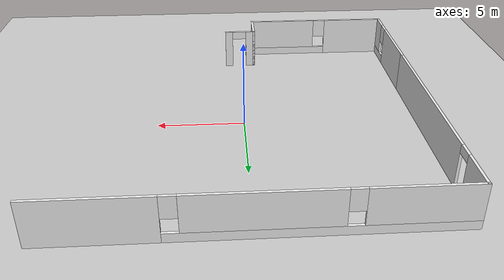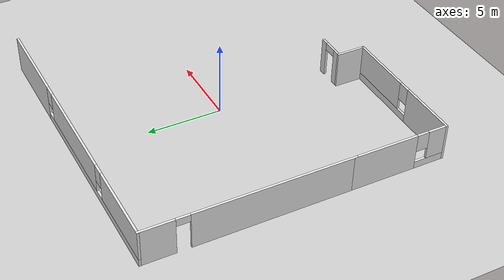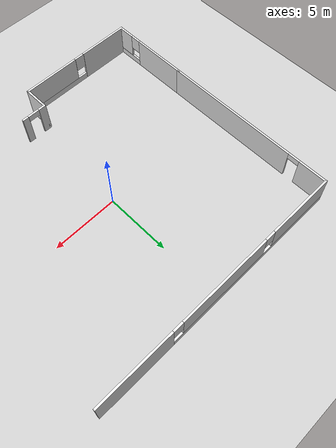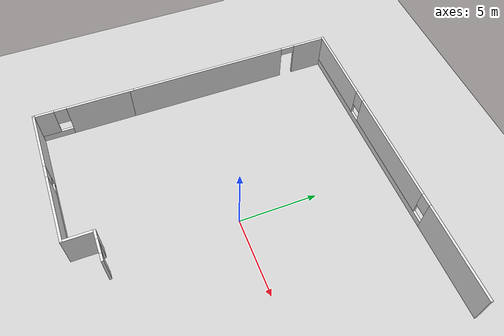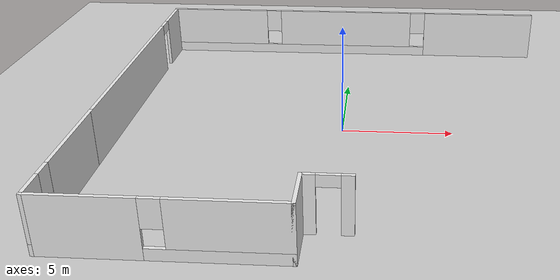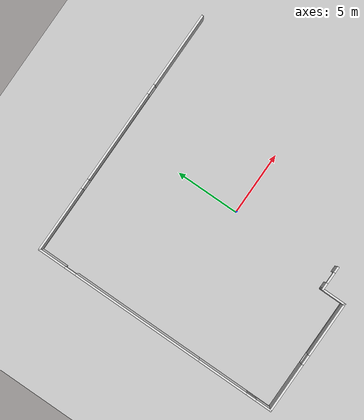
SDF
<sdf version="1.7">
 <world name="default">
  <model name="ground_plane">
   <static>1</static>
   <link name="link">
    <collision name="collision">
     <geometry><plane><normal>0 0 1</normal><size>100 100</size></plane></geometry>
     <surface><friction><ode><mu>100</mu><mu2>50</mu2></ode></friction></surface>
    </collision>
    <visual name="visual">
     <cast_shadows>0</cast_shadows>
     <geometry><plane><normal>0 0 1</normal><size>100 100</size></plane></geometry>
     <material>
      <script><uri>file://media/materials/scripts/gazebo.material</uri><name>Gazebo/Grey</name></script>
     </material>
    </visual>
   </link>
  </model>
  <model name="office_env_w_complete_new">
   <link name="Wall_10">
    <pose>-5.46873 -9.925 0 0 -0 0</pose>
    <visual name="Wall_10_Visual_0">
     <pose>-2.62812 0 1.25 0 -0 0</pose>
     <geometry><box><size>3.99376 0.15 2.5</size></box></geometry>
     <material>
      <script>
       <uri>model://office_env_w/materials/scripts</uri>
       <uri>model://office_env_w/materials/textures</uri>
       <name>wall_white</name>
      </script>
      <shader type="pixel"/>
     </material>
     <meta><layer>0</layer></meta>
    </visual>
    <visual name="Wall_10_Visual_1">
     <pose>1.99688 0 0.25 0 -0 0</pose>
     <geometry><box><size>5.25624 0.15 0.5</size></box></geometry>
     <material>
      <script>
       <uri>model://office_env_w/materials/scripts</uri>
       <uri>model://office_env_w/materials/textures</uri>
       <name>wall_white</name>
      </script>
      <shader type="pixel"/>
     </material>
     <meta><layer>0</layer></meta>
    </visual>
    <visual name="Wall_10_Visual_2">
     <pose>2.39688 0 1.5 0 -0 0</pose>
     <geometry><box><size>4.45624 0.15 2</size></box></geometry>
     <material>
      <script>
       <uri>model://office_env_w/materials/scripts</uri>
       <uri>model://office_env_w/materials/textures</uri>
       <name>wall_white</name>
      </script>
      <shader type="pixel"/>
     </material>
     <meta><layer>0</layer></meta>
    </visual>
    <visual name="Wall_10_Visual_3">
     <pose>-0.231239 0 1.9 0 -0 0</pose>
     <geometry><box><size>0.8 0.15 1.2</size></box></geometry>
     <material>
      <script>
       <uri>model://office_env_w/materials/scripts</uri>
       <uri>model://office_env_w/materials/textures</uri>
       <name>wall_white</name>
      </script>
      <shader type="pixel"/>
     </material>
     <meta><layer>0</layer></meta>
    </visual>
    <collision name="Wall_10_Collision_0">
     <pose>-2.62812 0 1.25 0 -0 0</pose>
     <geometry><box><size>3.99376 0.15 2.5</size></box></geometry>
     <surface>
      <friction>
       <ode><mu>1</mu><mu2>1</mu2><fdir1>0 0 0</fdir1><slip1>0</slip1><slip2>0</slip2></ode>
       <torsional>
        <coefficient>1</coefficient>
        <patch_radius>0</patch_radius>
        <surface_radius>0</surface_radius>
        <use_patch_radius>1</use_patch_radius>
        <ode><slip>0</slip></ode>
       </torsional>
      </friction>
      <bounce><restitution_coefficient>0</restitution_coefficient><threshold>1e+06</threshold></bounce>
      <contact>
       <collide_without_contact>0</collide_without_contact>
       <collide_without_contact_bitmask>1</collide_without_contact_bitmask>
       <collide_bitmask>1</collide_bitmask>
       <ode>
        <soft_cfm>0</soft_cfm>
        <soft_erp>0.2</soft_erp>
        <kp>1e+13</kp>
        <kd>1</kd>
        <max_vel>0.01</max_vel>
        <min_depth>0</min_depth>
       </ode>
       <bullet>
        <split_impulse>1</split_impulse>
        <split_impulse_penetration_threshold>-0.01</split_impulse_penetration_threshold>
        <soft_cfm>0</soft_cfm>
        <soft_erp>0.2</soft_erp>
        <kp>1e+13</kp>
        <kd>1</kd>
       </bullet>
      </contact>
     </surface>
    </collision>
    <collision name="Wall_10_Collision_2">
     <pose>2.39688 0 1.5 0 -0 0</pose>
     <geometry><box><size>4.45624 0.15 2</size></box></geometry>
     <surface>
      <friction>
       <ode><mu>1</mu><mu2>1</mu2><fdir1>0 0 0</fdir1><slip1>0</slip1><slip2>0</slip2></ode>
       <torsional>
        <coefficient>1</coefficient>
        <patch_radius>0</patch_radius>
        <surface_radius>0</surface_radius>
        <use_patch_radius>1</use_patch_radius>
        <ode><slip>0</slip></ode>
       </torsional>
      </friction>
      <bounce><restitution_coefficient>0</restitution_coefficient><threshold>1e+06</threshold></bounce>
      <contact>
       <collide_without_contact>0</collide_without_contact>
       <collide_without_contact_bitmask>1</collide_without_contact_bitmask>
       <collide_bitmask>1</collide_bitmask>
       <ode>
        <soft_cfm>0</soft_cfm>
        <soft_erp>0.2</soft_erp>
        <kp>1e+13</kp>
        <kd>1</kd>
        <max_vel>0.01</max_vel>
        <min_depth>0</min_depth>
       </ode>
       <bullet>
        <split_impulse>1</split_impulse>
        <split_impulse_penetration_threshold>-0.01</split_impulse_penetration_threshold>
        <soft_cfm>0</soft_cfm>
        <soft_erp>0.2</soft_erp>
        <kp>1e+13</kp>
        <kd>1</kd>
       </bullet>
      </contact>
     </surface>
    </collision>
    <collision name="Wall_10_Collision_1">
     <pose>1.99688 0 0.25 0 -0 0</pose>
     <geometry><box><size>5.25624 0.15 0.5</size></box></geometry>
     <surface>
      <friction>
       <ode><mu>1</mu><mu2>1</mu2><fdir1>0 0 0</fdir1><slip1>0</slip1><slip2>0</slip2></ode>
       <torsional>
        <coefficient>1</coefficient>
        <patch_radius>0</patch_radius>
        <surface_radius>0</surface_radius>
        <use_patch_radius>1</use_patch_radius>
        <ode><slip>0</slip></ode>
       </torsional>
      </friction>
      <bounce><restitution_coefficient>0</restitution_coefficient><threshold>1e+06</threshold></bounce>
      <contact>
       <collide_without_contact>0</collide_without_contact>
       <collide_without_contact_bitmask>1</collide_without_contact_bitmask>
       <collide_bitmask>1</collide_bitmask>
       <ode>
        <soft_cfm>0</soft_cfm>
        <soft_erp>0.2</soft_erp>
        <kp>1e+13</kp>
        <kd>1</kd>
        <max_vel>0.01</max_vel>
        <min_depth>0</min_depth>
       </ode>
       <bullet>
        <split_impulse>1</split_impulse>
        <split_impulse_penetration_threshold>-0.01</split_impulse_penetration_threshold>
        <soft_cfm>0</soft_cfm>
        <soft_erp>0.2</soft_erp>
        <kp>1e+13</kp>
        <kd>1</kd>
       </bullet>
      </contact>
     </surface>
    </collision>
    <collision name="Wall_10_Collision_3">
     <pose>-0.231239 0 1.9 0 -0 0</pose>
     <geometry><box><size>0.8 0.15 1.2</size></box></geometry>
     <surface>
      <friction>
       <ode><mu>1</mu><mu2>1</mu2><fdir1>0 0 0</fdir1><slip1>0</slip1><slip2>0</slip2></ode>
       <torsional>
        <coefficient>1</coefficient>
        <patch_radius>0</patch_radius>
        <surface_radius>0</surface_radius>
        <use_patch_radius>1</use_patch_radius>
        <ode><slip>0</slip></ode>
       </torsional>
      </friction>
      <bounce><restitution_coefficient>0</restitution_coefficient><threshold>1e+06</threshold></bounce>
      <contact>
       <collide_without_contact>0</collide_without_contact>
       <collide_without_contact_bitmask>1</collide_without_contact_bitmask>
       <collide_bitmask>1</collide_bitmask>
       <ode>
        <soft_cfm>0</soft_cfm>
        <soft_erp>0.2</soft_erp>
        <kp>1e+13</kp>
        <kd>1</kd>
        <max_vel>0.01</max_vel>
        <min_depth>0</min_depth>
       </ode>
       <bullet>
        <split_impulse>1</split_impulse>
        <split_impulse_penetration_threshold>-0.01</split_impulse_penetration_threshold>
        <soft_cfm>0</soft_cfm>
        <soft_erp>0.2</soft_erp>
        <kp>1e+13</kp>
        <kd>1</kd>
       </bullet>
      </contact>
     </surface>
    </collision>
   </link>
   <link name="Wall_11">
    <pose>-0.918728 -9 0 0 -0 1.5708</pose>
    <visual name="Wall_11_Visual">
     <pose>0 0 1.25 0 -0 0</pose>
     <geometry><box><size>2 0.15 2.5</size></box></geometry>
     <material>
      <script>
       <uri>model://office_env_w/materials/scripts</uri>
       <uri>model://office_env_w/materials/textures</uri>
       <name>wall_white</name>
      </script>
      <shader type="pixel"/>
     </material>
     <meta><layer>0</layer></meta>
    </visual>
    <collision name="Wall_11_Collision">
     <pose>0 0 1.25 0 -0 0</pose>
     <geometry><box><size>2 0.15 2.5</size></box></geometry>
     <surface>
      <friction>
       <ode><mu>1</mu><mu2>1</mu2><fdir1>0 0 0</fdir1><slip1>0</slip1><slip2>0</slip2></ode>
       <torsional>
        <coefficient>1</coefficient>
        <patch_radius>0</patch_radius>
        <surface_radius>0</surface_radius>
        <use_patch_radius>1</use_patch_radius>
        <ode><slip>0</slip></ode>
       </torsional>
      </friction>
      <bounce><restitution_coefficient>0</restitution_coefficient><threshold>1e+06</threshold></bounce>
      <contact>
       <collide_without_contact>0</collide_without_contact>
       <collide_without_contact_bitmask>1</collide_without_contact_bitmask>
       <collide_bitmask>1</collide_bitmask>
       <ode>
        <soft_cfm>0</soft_cfm>
        <soft_erp>0.2</soft_erp>
        <kp>1e+13</kp>
        <kd>1</kd>
        <max_vel>0.01</max_vel>
        <min_depth>0</min_depth>
       </ode>
       <bullet>
        <split_impulse>1</split_impulse>
        <split_impulse_penetration_threshold>-0.01</split_impulse_penetration_threshold>
        <soft_cfm>0</soft_cfm>
        <soft_erp>0.2</soft_erp>
        <kp>1e+13</kp>
        <kd>1</kd>
       </bullet>
      </contact>
     </surface>
    </collision>
   </link>
   <link name="Wall_12">
    <pose>0.006272 -8.075 0 0 -0 0</pose>
    <visual name="Wall_12_Visual_1">
     <pose>0.754347 0 1.25 0 -0 0</pose>
     <geometry><box><size>0.491306 0.15 2.5</size></box></geometry>
     <material>
      <script>
       <uri>model://office_env_w/materials/scripts</uri>
       <uri>model://office_env_w/materials/textures</uri>
       <name>wall_white</name>
      </script>
      <shader type="pixel"/>
     </material>
     <meta><layer>0</layer></meta>
    </visual>
    <visual name="Wall_12_Visual_0">
     <pose>-0.695653 0 1.25 0 -0 0</pose>
     <geometry><box><size>0.608694 0.15 2.5</size></box></geometry>
     <material>
      <script>
       <uri>model://office_env_w/materials/scripts</uri>
       <uri>model://office_env_w/materials/textures</uri>
       <name>wall_white</name>
      </script>
      <shader type="pixel"/>
     </material>
     <meta><layer>0</layer></meta>
    </visual>
    <visual name="Wall_12_Visual_2">
     <pose>0.058694 0 2.25 0 -0 0</pose>
     <geometry><box><size>0.9 0.15 0.5</size></box></geometry>
     <material>
      <script>
       <uri>model://office_env_w/materials/scripts</uri>
       <uri>model://office_env_w/materials/textures</uri>
       <name>wall_white</name>
      </script>
      <shader type="pixel"/>
     </material>
     <meta><layer>0</layer></meta>
    </visual>
    <collision name="Wall_12_Collision_0">
     <pose>-0.695653 0 1.25 0 -0 0</pose>
     <geometry><box><size>0.608694 0.15 2.5</size></box></geometry>
     <surface>
      <friction>
       <ode><mu>1</mu><mu2>1</mu2><fdir1>0 0 0</fdir1><slip1>0</slip1><slip2>0</slip2></ode>
       <torsional>
        <coefficient>1</coefficient>
        <patch_radius>0</patch_radius>
        <surface_radius>0</surface_radius>
        <use_patch_radius>1</use_patch_radius>
        <ode><slip>0</slip></ode>
       </torsional>
      </friction>
      <bounce><restitution_coefficient>0</restitution_coefficient><threshold>1e+06</threshold></bounce>
      <contact>
       <collide_without_contact>0</collide_without_contact>
       <collide_without_contact_bitmask>1</collide_without_contact_bitmask>
       <collide_bitmask>1</collide_bitmask>
       <ode>
        <soft_cfm>0</soft_cfm>
        <soft_erp>0.2</soft_erp>
        <kp>1e+13</kp>
        <kd>1</kd>
        <max_vel>0.01</max_vel>
        <min_depth>0</min_depth>
       </ode>
       <bullet>
        <split_impulse>1</split_impulse>
        <split_impulse_penetration_threshold>-0.01</split_impulse_penetration_threshold>
        <soft_cfm>0</soft_cfm>
        <soft_erp>0.2</soft_erp>
        <kp>1e+13</kp>
        <kd>1</kd>
       </bullet>
      </contact>
     </surface>
    </collision>
    <collision name="Wall_12_Collision_1">
     <pose>0.754347 0 1.25 0 -0 0</pose>
     <geometry><box><size>0.491306 0.15 2.5</size></box></geometry>
     <surface>
      <friction>
       <ode><mu>1</mu><mu2>1</mu2><fdir1>0 0 0</fdir1><slip1>0</slip1><slip2>0</slip2></ode>
       <torsional>
        <coefficient>1</coefficient>
        <patch_radius>0</patch_radius>
        <surface_radius>0</surface_radius>
        <use_patch_radius>1</use_patch_radius>
        <ode><slip>0</slip></ode>
       </torsional>
      </friction>
      <bounce><restitution_coefficient>0</restitution_coefficient><threshold>1e+06</threshold></bounce>
      <contact>
       <collide_without_contact>0</collide_without_contact>
       <collide_without_contact_bitmask>1</collide_without_contact_bitmask>
       <collide_bitmask>1</collide_bitmask>
       <ode>
        <soft_cfm>0</soft_cfm>
        <soft_erp>0.2</soft_erp>
        <kp>1e+13</kp>
        <kd>1</kd>
        <max_vel>0.01</max_vel>
        <min_depth>0</min_depth>
       </ode>
       <bullet>
        <split_impulse>1</split_impulse>
        <split_impulse_penetration_threshold>-0.01</split_impulse_penetration_threshold>
        <soft_cfm>0</soft_cfm>
        <soft_erp>0.2</soft_erp>
        <kp>1e+13</kp>
        <kd>1</kd>
       </bullet>
      </contact>
     </surface>
    </collision>
    <collision name="Wall_12_Collision_2">
     <pose>0.058694 0 2.25 0 -0 0</pose>
     <geometry><box><size>0.9 0.15 0.5</size></box></geometry>
     <surface>
      <friction>
       <ode><mu>1</mu><mu2>1</mu2><fdir1>0 0 0</fdir1><slip1>0</slip1><slip2>0</slip2></ode>
       <torsional>
        <coefficient>1</coefficient>
        <patch_radius>0</patch_radius>
        <surface_radius>0</surface_radius>
        <use_patch_radius>1</use_patch_radius>
        <ode><slip>0</slip></ode>
       </torsional>
      </friction>
      <bounce><restitution_coefficient>0</restitution_coefficient><threshold>1e+06</threshold></bounce>
      <contact>
       <collide_without_contact>0</collide_without_contact>
       <collide_without_contact_bitmask>1</collide_without_contact_bitmask>
       <collide_bitmask>1</collide_bitmask>
       <ode>
        <soft_cfm>0</soft_cfm>
        <soft_erp>0.2</soft_erp>
        <kp>1e+13</kp>
        <kd>1</kd>
        <max_vel>0.01</max_vel>
        <min_depth>0</min_depth>
       </ode>
       <bullet>
        <split_impulse>1</split_impulse>
        <split_impulse_penetration_threshold>-0.01</split_impulse_penetration_threshold>
        <soft_cfm>0</soft_cfm>
        <soft_erp>0.2</soft_erp>
        <kp>1e+13</kp>
        <kd>1</kd>
       </bullet>
      </contact>
     </surface>
    </collision>
   </link>
   <link name="Wall_19">
    <pose>0 9.925 0 0 -0 3.14159</pose>
    <visual name="Wall_19_Visual_0">
     <pose>-7.12533 0 1.25 0 -0 0</pose>
     <geometry><box><size>5.96188 0.15 2.5</size></box></geometry>
     <material>
      <script>
       <uri>model://office_env_w/materials/scripts</uri>
       <uri>model://office_env_w/materials/textures</uri>
       <name>wall_white</name>
      </script>
      <shader type="pixel"/>
     </material>
     <meta><layer>0</layer></meta>
    </visual>
    <visual name="Wall_19_Visual_1">
     <pose>2.98094 0 0.25 0 -0 0</pose>
     <geometry><box><size>14.2507 0.15 0.5</size></box></geometry>
     <material>
      <script>
       <uri>model://office_env_w/materials/scripts</uri>
       <uri>model://office_env_w/materials/textures</uri>
       <name>wall_white</name>
      </script>
      <shader type="pixel"/>
     </material>
     <meta><layer>0</layer></meta>
    </visual>
    <visual name="Wall_19_Visual_2">
     <pose>0.326454 0 1.5 0 -0 0</pose>
     <geometry><box><size>7.34169 0.15 2</size></box></geometry>
     <material>
      <script>
       <uri>model://office_env_w/materials/scripts</uri>
       <uri>model://office_env_w/materials/textures</uri>
       <name>wall_white</name>
      </script>
      <shader type="pixel"/>
     </material>
     <meta><layer>0</layer></meta>
    </visual>
    <visual name="Wall_19_Visual_3">
     <pose>7.45179 0 1.5 0 -0 0</pose>
     <geometry><box><size>5.30898 0.15 2</size></box></geometry>
     <material>
      <script>
       <uri>model://office_env_w/materials/scripts</uri>
       <uri>model://office_env_w/materials/textures</uri>
       <name>wall_white</name>
      </script>
      <shader type="pixel"/>
     </material>
     <meta><layer>0</layer></meta>
    </visual>
    <visual name="Wall_19_Visual_4">
     <pose>-3.74439 0 1.9 0 -0 0</pose>
     <geometry><box><size>0.8 0.15 1.2</size></box></geometry>
     <material>
      <script>
       <uri>model://office_env_w/materials/scripts</uri>
       <uri>model://office_env_w/materials/textures</uri>
       <name>wall_white</name>
      </script>
      <shader type="pixel"/>
     </material>
     <meta><layer>0</layer></meta>
    </visual>
    <visual name="Wall_19_Visual_5">
     <pose>4.3973 0 1.9 0 -0 0</pose>
     <geometry><box><size>0.8 0.15 1.2</size></box></geometry>
     <material>
      <script>
       <uri>model://office_env_w/materials/scripts</uri>
       <uri>model://office_env_w/materials/textures</uri>
       <name>wall_white</name>
      </script>
      <shader type="pixel"/>
     </material>
     <meta><layer>0</layer></meta>
    </visual>
    <collision name="Wall_19_Collision_0">
     <pose>-7.12533 0 1.25 0 -0 0</pose>
     <geometry><box><size>5.96188 0.15 2.5</size></box></geometry>
     <surface>
      <friction>
       <ode><mu>1</mu><mu2>1</mu2><fdir1>0 0 0</fdir1><slip1>0</slip1><slip2>0</slip2></ode>
       <torsional>
        <coefficient>1</coefficient>
        <patch_radius>0</patch_radius>
        <surface_radius>0</surface_radius>
        <use_patch_radius>1</use_patch_radius>
        <ode><slip>0</slip></ode>
       </torsional>
      </friction>
      <bounce><restitution_coefficient>0</restitution_coefficient><threshold>1e+06</threshold></bounce>
      <contact>
       <collide_without_contact>0</collide_without_contact>
       <collide_without_contact_bitmask>1</collide_without_contact_bitmask>
       <collide_bitmask>1</collide_bitmask>
       <ode>
        <soft_cfm>0</soft_cfm>
        <soft_erp>0.2</soft_erp>
        <kp>1e+13</kp>
        <kd>1</kd>
        <max_vel>0.01</max_vel>
        <min_depth>0</min_depth>
       </ode>
       <bullet>
        <split_impulse>1</split_impulse>
        <split_impulse_penetration_threshold>-0.01</split_impulse_penetration_threshold>
        <soft_cfm>0</soft_cfm>
        <soft_erp>0.2</soft_erp>
        <kp>1e+13</kp>
        <kd>1</kd>
       </bullet>
      </contact>
     </surface>
    </collision>
    <collision name="Wall_19_Collision_1">
     <pose>2.98094 0 0.25 0 -0 0</pose>
     <geometry><box><size>14.2507 0.15 0.5</size></box></geometry>
     <surface>
      <friction>
       <ode><mu>1</mu><mu2>1</mu2><fdir1>0 0 0</fdir1><slip1>0</slip1><slip2>0</slip2></ode>
       <torsional>
        <coefficient>1</coefficient>
        <patch_radius>0</patch_radius>
        <surface_radius>0</surface_radius>
        <use_patch_radius>1</use_patch_radius>
        <ode><slip>0</slip></ode>
       </torsional>
      </friction>
      <bounce><restitution_coefficient>0</restitution_coefficient><threshold>1e+06</threshold></bounce>
      <contact>
       <collide_without_contact>0</collide_without_contact>
       <collide_without_contact_bitmask>1</collide_without_contact_bitmask>
       <collide_bitmask>1</collide_bitmask>
       <ode>
        <soft_cfm>0</soft_cfm>
        <soft_erp>0.2</soft_erp>
        <kp>1e+13</kp>
        <kd>1</kd>
        <max_vel>0.01</max_vel>
        <min_depth>0</min_depth>
       </ode>
       <bullet>
        <split_impulse>1</split_impulse>
        <split_impulse_penetration_threshold>-0.01</split_impulse_penetration_threshold>
        <soft_cfm>0</soft_cfm>
        <soft_erp>0.2</soft_erp>
        <kp>1e+13</kp>
        <kd>1</kd>
       </bullet>
      </contact>
     </surface>
    </collision>
    <collision name="Wall_19_Collision_2">
     <pose>0.326454 0 1.5 0 -0 0</pose>
     <geometry><box><size>7.34169 0.15 2</size></box></geometry>
     <surface>
      <friction>
       <ode><mu>1</mu><mu2>1</mu2><fdir1>0 0 0</fdir1><slip1>0</slip1><slip2>0</slip2></ode>
       <torsional>
        <coefficient>1</coefficient>
        <patch_radius>0</patch_radius>
        <surface_radius>0</surface_radius>
        <use_patch_radius>1</use_patch_radius>
        <ode><slip>0</slip></ode>
       </torsional>
      </friction>
      <bounce><restitution_coefficient>0</restitution_coefficient><threshold>1e+06</threshold></bounce>
      <contact>
       <collide_without_contact>0</collide_without_contact>
       <collide_without_contact_bitmask>1</collide_without_contact_bitmask>
       <collide_bitmask>1</collide_bitmask>
       <ode>
        <soft_cfm>0</soft_cfm>
        <soft_erp>0.2</soft_erp>
        <kp>1e+13</kp>
        <kd>1</kd>
        <max_vel>0.01</max_vel>
        <min_depth>0</min_depth>
       </ode>
       <bullet>
        <split_impulse>1</split_impulse>
        <split_impulse_penetration_threshold>-0.01</split_impulse_penetration_threshold>
        <soft_cfm>0</soft_cfm>
        <soft_erp>0.2</soft_erp>
        <kp>1e+13</kp>
        <kd>1</kd>
       </bullet>
      </contact>
     </surface>
    </collision>
    <collision name="Wall_19_Collision_3">
     <pose>7.45179 0 1.5 0 -0 0</pose>
     <geometry><box><size>5.30898 0.15 2</size></box></geometry>
     <surface>
      <friction>
       <ode><mu>1</mu><mu2>1</mu2><fdir1>0 0 0</fdir1><slip1>0</slip1><slip2>0</slip2></ode>
       <torsional>
        <coefficient>1</coefficient>
        <patch_radius>0</patch_radius>
        <surface_radius>0</surface_radius>
        <use_patch_radius>1</use_patch_radius>
        <ode><slip>0</slip></ode>
       </torsional>
      </friction>
      <bounce><restitution_coefficient>0</restitution_coefficient><threshold>1e+06</threshold></bounce>
      <contact>
       <collide_without_contact>0</collide_without_contact>
       <collide_without_contact_bitmask>1</collide_without_contact_bitmask>
       <collide_bitmask>1</collide_bitmask>
       <ode>
        <soft_cfm>0</soft_cfm>
        <soft_erp>0.2</soft_erp>
        <kp>1e+13</kp>
        <kd>1</kd>
        <max_vel>0.01</max_vel>
        <min_depth>0</min_depth>
       </ode>
       <bullet>
        <split_impulse>1</split_impulse>
        <split_impulse_penetration_threshold>-0.01</split_impulse_penetration_threshold>
        <soft_cfm>0</soft_cfm>
        <soft_erp>0.2</soft_erp>
        <kp>1e+13</kp>
        <kd>1</kd>
       </bullet>
      </contact>
     </surface>
    </collision>
    <collision name="Wall_19_Collision_5">
     <pose>4.3973 0 1.9 0 -0 0</pose>
     <geometry><box><size>0.8 0.15 1.2</size></box></geometry>
     <surface>
      <friction>
       <ode><mu>1</mu><mu2>1</mu2><fdir1>0 0 0</fdir1><slip1>0</slip1><slip2>0</slip2></ode>
       <torsional>
        <coefficient>1</coefficient>
        <patch_radius>0</patch_radius>
        <surface_radius>0</surface_radius>
        <use_patch_radius>1</use_patch_radius>
        <ode><slip>0</slip></ode>
       </torsional>
      </friction>
      <bounce><restitution_coefficient>0</restitution_coefficient><threshold>1e+06</threshold></bounce>
      <contact>
       <collide_without_contact>0</collide_without_contact>
       <collide_without_contact_bitmask>1</collide_without_contact_bitmask>
       <collide_bitmask>1</collide_bitmask>
       <ode>
        <soft_cfm>0</soft_cfm>
        <soft_erp>0.2</soft_erp>
        <kp>1e+13</kp>
        <kd>1</kd>
        <max_vel>0.01</max_vel>
        <min_depth>0</min_depth>
       </ode>
       <bullet>
        <split_impulse>1</split_impulse>
        <split_impulse_penetration_threshold>-0.01</split_impulse_penetration_threshold>
        <soft_cfm>0</soft_cfm>
        <soft_erp>0.2</soft_erp>
        <kp>1e+13</kp>
        <kd>1</kd>
       </bullet>
      </contact>
     </surface>
    </collision>
    <collision name="Wall_19_Collision_4">
     <pose>-3.74439 0 1.9 0 -0 0</pose>
     <geometry><box><size>0.8 0.15 1.2</size></box></geometry>
     <surface>
      <friction>
       <ode><mu>1</mu><mu2>1</mu2><fdir1>0 0 0</fdir1><slip1>0</slip1><slip2>0</slip2></ode>
       <torsional>
        <coefficient>1</coefficient>
        <patch_radius>0</patch_radius>
        <surface_radius>0</surface_radius>
        <use_patch_radius>1</use_patch_radius>
        <ode><slip>0</slip></ode>
       </torsional>
      </friction>
      <bounce><restitution_coefficient>0</restitution_coefficient><threshold>1e+06</threshold></bounce>
      <contact>
       <collide_without_contact>0</collide_without_contact>
       <collide_without_contact_bitmask>1</collide_without_contact_bitmask>
       <collide_bitmask>1</collide_bitmask>
       <ode>
        <soft_cfm>0</soft_cfm>
        <soft_erp>0.2</soft_erp>
        <kp>1e+13</kp>
        <kd>1</kd>
        <max_vel>0.01</max_vel>
        <min_depth>0</min_depth>
       </ode>
       <bullet>
        <split_impulse>1</split_impulse>
        <split_impulse_penetration_threshold>-0.01</split_impulse_penetration_threshold>
        <soft_cfm>0</soft_cfm>
        <soft_erp>0.2</soft_erp>
        <kp>1e+13</kp>
        <kd>1</kd>
       </bullet>
      </contact>
     </surface>
    </collision>
   </link>
   <link name="Wall_2">
    <pose>-10.0187 -6.75 0 0 0 -1.5708</pose>
    <visual name="Wall_2_Visual_0">
     <pose>-1.06854 0 1.25 0 -0 0</pose>
     <geometry><box><size>4.36293 0.15 2.5</size></box></geometry>
     <material>
      <script>
       <uri>model://office_env_w/materials/scripts</uri>
       <uri>model://office_env_w/materials/textures</uri>
       <name>wall_white</name>
      </script>
      <shader type="pixel"/>
     </material>
     <meta><layer>0</layer></meta>
    </visual>
    <visual name="Wall_2_Visual_1">
     <pose>2.18147 0 0.25 0 -0 0</pose>
     <geometry><box><size>2.13707 0.15 0.5</size></box></geometry>
     <material>
      <script>
       <uri>model://office_env_w/materials/scripts</uri>
       <uri>model://office_env_w/materials/textures</uri>
       <name>wall_white</name>
      </script>
      <shader type="pixel"/>
     </material>
     <meta><layer>0</layer></meta>
    </visual>
    <visual name="Wall_2_Visual_2">
     <pose>2.58147 0 1.5 0 -0 0</pose>
     <geometry><box><size>1.33707 0.15 2</size></box></geometry>
     <material>
      <script>
       <uri>model://office_env_w/materials/scripts</uri>
       <uri>model://office_env_w/materials/textures</uri>
       <name>wall_white</name>
      </script>
      <shader type="pixel"/>
     </material>
     <meta><layer>0</layer></meta>
    </visual>
    <visual name="Wall_2_Visual_3">
     <pose>1.51293 0 1.9 0 -0 0</pose>
     <geometry><box><size>0.8 0.15 1.2</size></box></geometry>
     <material>
      <script>
       <uri>model://office_env_w/materials/scripts</uri>
       <uri>model://office_env_w/materials/textures</uri>
       <name>wall_white</name>
      </script>
      <shader type="pixel"/>
     </material>
     <meta><layer>0</layer></meta>
    </visual>
    <collision name="Wall_2_Collision_0">
     <pose>-1.06854 0 1.25 0 -0 0</pose>
     <geometry><box><size>4.36293 0.15 2.5</size></box></geometry>
     <surface>
      <friction>
       <ode><mu>1</mu><mu2>1</mu2><fdir1>0 0 0</fdir1><slip1>0</slip1><slip2>0</slip2></ode>
       <torsional>
        <coefficient>1</coefficient>
        <patch_radius>0</patch_radius>
        <surface_radius>0</surface_radius>
        <use_patch_radius>1</use_patch_radius>
        <ode><slip>0</slip></ode>
       </torsional>
      </friction>
      <bounce><restitution_coefficient>0</restitution_coefficient><threshold>1e+06</threshold></bounce>
      <contact>
       <collide_without_contact>0</collide_without_contact>
       <collide_without_contact_bitmask>1</collide_without_contact_bitmask>
       <collide_bitmask>1</collide_bitmask>
       <ode>
        <soft_cfm>0</soft_cfm>
        <soft_erp>0.2</soft_erp>
        <kp>1e+13</kp>
        <kd>1</kd>
        <max_vel>0.01</max_vel>
        <min_depth>0</min_depth>
       </ode>
       <bullet>
        <split_impulse>1</split_impulse>
        <split_impulse_penetration_threshold>-0.01</split_impulse_penetration_threshold>
        <soft_cfm>0</soft_cfm>
        <soft_erp>0.2</soft_erp>
        <kp>1e+13</kp>
        <kd>1</kd>
       </bullet>
      </contact>
     </surface>
    </collision>
    <collision name="Wall_2_Collision_1">
     <pose>2.18147 0 0.25 0 -0 0</pose>
     <geometry><box><size>2.13707 0.15 0.5</size></box></geometry>
     <surface>
      <friction>
       <ode><mu>1</mu><mu2>1</mu2><fdir1>0 0 0</fdir1><slip1>0</slip1><slip2>0</slip2></ode>
       <torsional>
        <coefficient>1</coefficient>
        <patch_radius>0</patch_radius>
        <surface_radius>0</surface_radius>
        <use_patch_radius>1</use_patch_radius>
        <ode><slip>0</slip></ode>
       </torsional>
      </friction>
      <bounce><restitution_coefficient>0</restitution_coefficient><threshold>1e+06</threshold></bounce>
      <contact>
       <collide_without_contact>0</collide_without_contact>
       <collide_without_contact_bitmask>1</collide_without_contact_bitmask>
       <collide_bitmask>1</collide_bitmask>
       <ode>
        <soft_cfm>0</soft_cfm>
        <soft_erp>0.2</soft_erp>
        <kp>1e+13</kp>
        <kd>1</kd>
        <max_vel>0.01</max_vel>
        <min_depth>0</min_depth>
       </ode>
       <bullet>
        <split_impulse>1</split_impulse>
        <split_impulse_penetration_threshold>-0.01</split_impulse_penetration_threshold>
        <soft_cfm>0</soft_cfm>
        <soft_erp>0.2</soft_erp>
        <kp>1e+13</kp>
        <kd>1</kd>
       </bullet>
      </contact>
     </surface>
    </collision>
    <collision name="Wall_2_Collision_2">
     <pose>2.58147 0 1.5 0 -0 0</pose>
     <geometry><box><size>1.33707 0.15 2</size></box></geometry>
     <surface>
      <friction>
       <ode><mu>1</mu><mu2>1</mu2><fdir1>0 0 0</fdir1><slip1>0</slip1><slip2>0</slip2></ode>
       <torsional>
        <coefficient>1</coefficient>
        <patch_radius>0</patch_radius>
        <surface_radius>0</surface_radius>
        <use_patch_radius>1</use_patch_radius>
        <ode><slip>0</slip></ode>
       </torsional>
      </friction>
      <bounce><restitution_coefficient>0</restitution_coefficient><threshold>1e+06</threshold></bounce>
      <contact>
       <collide_without_contact>0</collide_without_contact>
       <collide_without_contact_bitmask>1</collide_without_contact_bitmask>
       <collide_bitmask>1</collide_bitmask>
       <ode>
        <soft_cfm>0</soft_cfm>
        <soft_erp>0.2</soft_erp>
        <kp>1e+13</kp>
        <kd>1</kd>
        <max_vel>0.01</max_vel>
        <min_depth>0</min_depth>
       </ode>
       <bullet>
        <split_impulse>1</split_impulse>
        <split_impulse_penetration_threshold>-0.01</split_impulse_penetration_threshold>
        <soft_cfm>0</soft_cfm>
        <soft_erp>0.2</soft_erp>
        <kp>1e+13</kp>
        <kd>1</kd>
       </bullet>
      </contact>
     </surface>
    </collision>
    <collision name="Wall_2_Collision_3">
     <pose>1.51293 0 1.9 0 -0 0</pose>
     <geometry><box><size>0.8 0.15 1.2</size></box></geometry>
     <surface>
      <friction>
       <ode><mu>1</mu><mu2>1</mu2><fdir1>0 0 0</fdir1><slip1>0</slip1><slip2>0</slip2></ode>
       <torsional>
        <coefficient>1</coefficient>
        <patch_radius>0</patch_radius>
        <surface_radius>0</surface_radius>
        <use_patch_radius>1</use_patch_radius>
        <ode><slip>0</slip></ode>
       </torsional>
      </friction>
      <bounce><restitution_coefficient>0</restitution_coefficient><threshold>1e+06</threshold></bounce>
      <contact>
       <collide_without_contact>0</collide_without_contact>
       <collide_without_contact_bitmask>1</collide_without_contact_bitmask>
       <collide_bitmask>1</collide_bitmask>
       <ode>
        <soft_cfm>0</soft_cfm>
        <soft_erp>0.2</soft_erp>
        <kp>1e+13</kp>
        <kd>1</kd>
        <max_vel>0.01</max_vel>
        <min_depth>0</min_depth>
       </ode>
       <bullet>
        <split_impulse>1</split_impulse>
        <split_impulse_penetration_threshold>-0.01</split_impulse_penetration_threshold>
        <soft_cfm>0</soft_cfm>
        <soft_erp>0.2</soft_erp>
        <kp>1e+13</kp>
        <kd>1</kd>
       </bullet>
      </contact>
     </surface>
    </collision>
   </link>
   <link name="Wall_20">
    <pose>-10.018 3.125 0 0 0 -1.5708</pose>
    <visual name="Wall_20_Visual_1">
     <pose>1.58697 0 1.25 0 -0 0</pose>
     <geometry><box><size>10.5761 0.15 2.5</size></box></geometry>
     <material>
      <script>
       <uri>model://office_env_w/materials/scripts</uri>
       <uri>model://office_env_w/materials/textures</uri>
       <name>wall_white</name>
      </script>
      <shader type="pixel"/>
     </material>
     <meta><layer>0</layer></meta>
    </visual>
    <visual name="Wall_20_Visual_0">
     <pose>-5.73803 0 1.25 0 -0 0</pose>
     <geometry><box><size>2.27394 0.15 2.5</size></box></geometry>
     <material>
      <script>
       <uri>model://office_env_w/materials/scripts</uri>
       <uri>model://office_env_w/materials/textures</uri>
       <name>wall_white</name>
      </script>
      <shader type="pixel"/>
     </material>
     <meta><layer>0</layer></meta>
    </visual>
    <visual name="Wall_20_Visual_2">
     <pose>-4.15106 0 2.25 0 -0 0</pose>
     <geometry><box><size>0.9 0.15 0.5</size></box></geometry>
     <material>
      <script>
       <uri>model://office_env_w/materials/scripts</uri>
       <uri>model://office_env_w/materials/textures</uri>
       <name>wall_white</name>
      </script>
      <shader type="pixel"/>
     </material>
     <meta><layer>0</layer></meta>
    </visual>
    <collision name="Wall_20_Collision_1">
     <pose>1.58697 0 1.25 0 -0 0</pose>
     <geometry><box><size>10.5761 0.15 2.5</size></box></geometry>
     <surface>
      <friction>
       <ode><mu>1</mu><mu2>1</mu2><fdir1>0 0 0</fdir1><slip1>0</slip1><slip2>0</slip2></ode>
       <torsional>
        <coefficient>1</coefficient>
        <patch_radius>0</patch_radius>
        <surface_radius>0</surface_radius>
        <use_patch_radius>1</use_patch_radius>
        <ode><slip>0</slip></ode>
       </torsional>
      </friction>
      <bounce><restitution_coefficient>0</restitution_coefficient><threshold>1e+06</threshold></bounce>
      <contact>
       <collide_without_contact>0</collide_without_contact>
       <collide_without_contact_bitmask>1</collide_without_contact_bitmask>
       <collide_bitmask>1</collide_bitmask>
       <ode>
        <soft_cfm>0</soft_cfm>
        <soft_erp>0.2</soft_erp>
        <kp>1e+13</kp>
        <kd>1</kd>
        <max_vel>0.01</max_vel>
        <min_depth>0</min_depth>
       </ode>
       <bullet>
        <split_impulse>1</split_impulse>
        <split_impulse_penetration_threshold>-0.01</split_impulse_penetration_threshold>
        <soft_cfm>0</soft_cfm>
        <soft_erp>0.2</soft_erp>
        <kp>1e+13</kp>
        <kd>1</kd>
       </bullet>
      </contact>
     </surface>
    </collision>
    <collision name="Wall_20_Collision_0">
     <pose>-5.73803 0 1.25 0 -0 0</pose>
     <geometry><box><size>2.27394 0.15 2.5</size></box></geometry>
     <surface>
      <friction>
       <ode><mu>1</mu><mu2>1</mu2><fdir1>0 0 0</fdir1><slip1>0</slip1><slip2>0</slip2></ode>
       <torsional>
        <coefficient>1</coefficient>
        <patch_radius>0</patch_radius>
        <surface_radius>0</surface_radius>
        <use_patch_radius>1</use_patch_radius>
        <ode><slip>0</slip></ode>
       </torsional>
      </friction>
      <bounce><restitution_coefficient>0</restitution_coefficient><threshold>1e+06</threshold></bounce>
      <contact>
       <collide_without_contact>0</collide_without_contact>
       <collide_without_contact_bitmask>1</collide_without_contact_bitmask>
       <collide_bitmask>1</collide_bitmask>
       <ode>
        <soft_cfm>0</soft_cfm>
        <soft_erp>0.2</soft_erp>
        <kp>1e+13</kp>
        <kd>1</kd>
        <max_vel>0.01</max_vel>
        <min_depth>0</min_depth>
       </ode>
       <bullet>
        <split_impulse>1</split_impulse>
        <split_impulse_penetration_threshold>-0.01</split_impulse_penetration_threshold>
        <soft_cfm>0</soft_cfm>
        <soft_erp>0.2</soft_erp>
        <kp>1e+13</kp>
        <kd>1</kd>
       </bullet>
      </contact>
     </surface>
    </collision>
    <collision name="Wall_20_Collision_2">
     <pose>-4.15106 0 2.25 0 -0 0</pose>
     <geometry><box><size>0.9 0.15 0.5</size></box></geometry>
     <surface>
      <friction>
       <ode><mu>1</mu><mu2>1</mu2><fdir1>0 0 0</fdir1><slip1>0</slip1><slip2>0</slip2></ode>
       <torsional>
        <coefficient>1</coefficient>
        <patch_radius>0</patch_radius>
        <surface_radius>0</surface_radius>
        <use_patch_radius>1</use_patch_radius>
        <ode><slip>0</slip></ode>
       </torsional>
      </friction>
      <bounce><restitution_coefficient>0</restitution_coefficient><threshold>1e+06</threshold></bounce>
      <contact>
       <collide_without_contact>0</collide_without_contact>
       <collide_without_contact_bitmask>1</collide_without_contact_bitmask>
       <collide_bitmask>1</collide_bitmask>
       <ode>
        <soft_cfm>0</soft_cfm>
        <soft_erp>0.2</soft_erp>
        <kp>1e+13</kp>
        <kd>1</kd>
        <max_vel>0.01</max_vel>
        <min_depth>0</min_depth>
       </ode>
       <bullet>
        <split_impulse>1</split_impulse>
        <split_impulse_penetration_threshold>-0.01</split_impulse_penetration_threshold>
        <soft_cfm>0</soft_cfm>
        <soft_erp>0.2</soft_erp>
        <kp>1e+13</kp>
        <kd>1</kd>
       </bullet>
      </contact>
     </surface>
    </collision>
   </link>
   <static>1</static>
   <pose>-0.0865 -0.0215 0 0 -0 0</pose>
  </model>
 </world>
</sdf>
